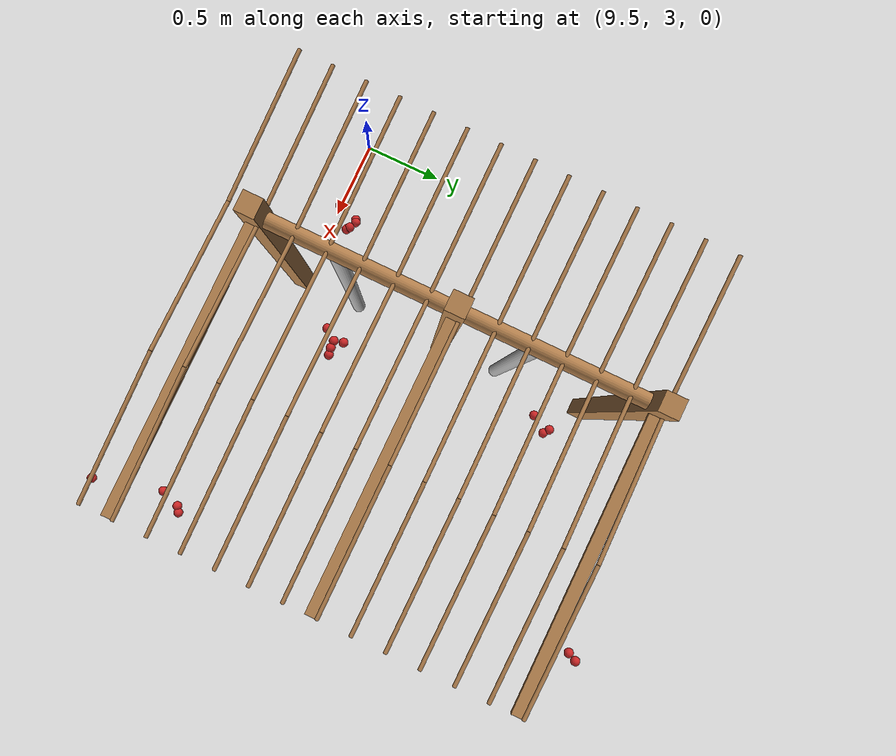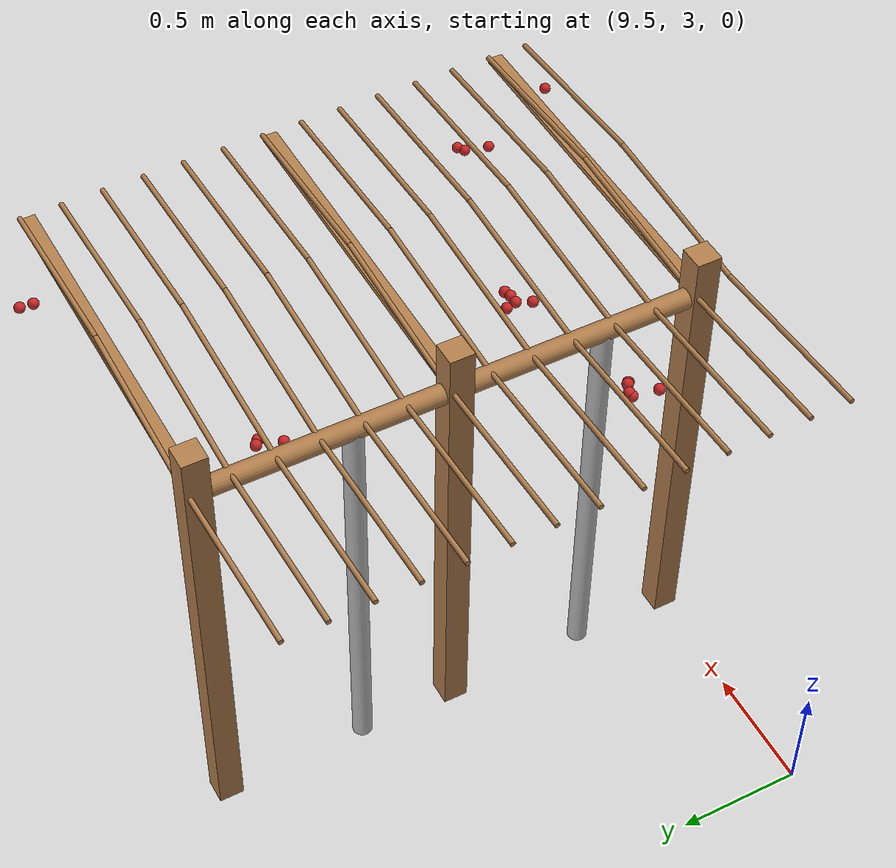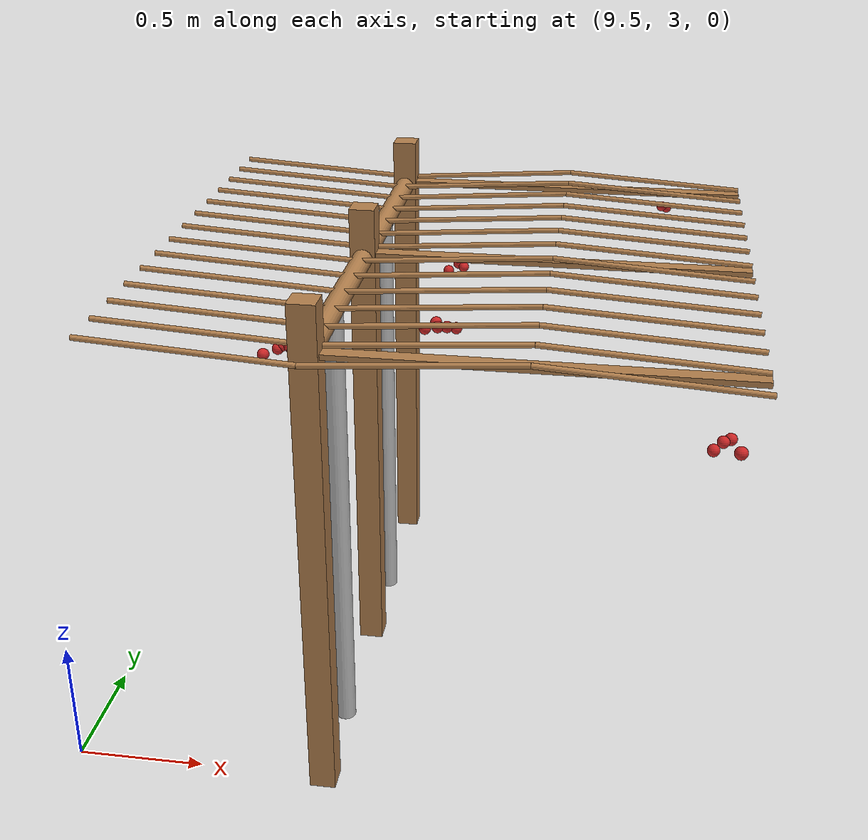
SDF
<sdf version="1.4">
 <model name="pergola">
  <include><name>post_80</name><pose>10.5 3.0 0 0 0 0</pose><uri>model://post</uri></include>
  <include><name>post_81</name><pose>10.5 4.0 0 0 0 0</pose><uri>model://post</uri></include>
  <include><name>post_82</name><pose>10.5 5.0 0 0 0 0</pose><uri>model://post</uri></include>
  <link name="beam_80">
   <pose>11.25 3.0 1.81 0 0 0</pose>
   <collision name="collision"><geometry><box><size>1.5 0.06 0.02</size></box></geometry></collision>
   <visual name="visual">
    <geometry><box><size>1.5 0.06 0.02</size></box></geometry>
    <material><script><name>Gazebo/Wood</name></script></material>
   </visual>
   <inertial>
    <mass>5</mass>
    <inertia>
     <ixx>0.0016666666666666668</ixx>
     <ixy>0.0</ixy>
     <ixz>0.0</ixz>
     <iyy>0.9390000000000001</iyy>
     <iyz>0.0</iyz>
     <izz>0.9376666666666665</izz>
    </inertia>
   </inertial>
  </link>
  <link name="beam_81">
   <pose>11.25 4.0 1.81 0 0 0</pose>
   <collision name="collision"><geometry><box><size>1.5 0.06 0.02</size></box></geometry></collision>
   <visual name="visual">
    <geometry><box><size>1.5 0.06 0.02</size></box></geometry>
    <material><script><name>Gazebo/Wood</name></script></material>
   </visual>
   <inertial>
    <mass>5</mass>
    <inertia>
     <ixx>0.0016666666666666668</ixx>
     <ixy>0.0</ixy>
     <ixz>0.0</ixz>
     <iyy>0.9390000000000001</iyy>
     <iyz>0.0</iyz>
     <izz>0.9376666666666665</izz>
    </inertia>
   </inertial>
  </link>
  <link name="beam_82">
   <pose>11.25 5.0 1.81 0 0 0</pose>
   <collision name="collision"><geometry><box><size>1.5 0.06 0.02</size></box></geometry></collision>
   <visual name="visual">
    <geometry><box><size>1.5 0.06 0.02</size></box></geometry>
    <material><script><name>Gazebo/Wood</name></script></material>
   </visual>
   <inertial>
    <mass>5</mass>
    <inertia>
     <ixx>0.0016666666666666668</ixx>
     <ixy>0.0</ixy>
     <ixz>0.0</ixz>
     <iyy>0.9390000000000001</iyy>
     <iyz>0.0</iyz>
     <izz>0.9376666666666665</izz>
    </inertia>
   </inertial>
  </link>
  <include><name>tree_73</name><pose>10.5 3.4 0 0 0 0</pose><uri>model://tree_trunk</uri></include>
  <include><name>tree_74</name><pose>10.5 4.4 0 0 0 0</pose><uri>model://tree_trunk</uri></include>
  <link name="baseBranch_73">
   <pose>10.5 3.5 1.8 1.5707963267948966 0 0</pose>
   <collision name="collision">
    <geometry><cylinder><radius>0.04</radius><length>0.94</length></cylinder></geometry>
   </collision>
   <visual name="visual">
    <geometry><cylinder><radius>0.04</radius><length>0.94</length></cylinder></geometry>
    <material><script><name>Gazebo/WoodFloor</name></script></material>
   </visual>
   <inertial>
    <mass>10</mass>
    <inertia>
     <ixx>0.7403333333333334</ixx>
     <ixy>0.0</ixy>
     <ixz>0.0</ixz>
     <iyy>0.7403333333333334</iyy>
     <iyz>0.0</iyz>
     <izz>0.008</izz>
    </inertia>
   </inertial>
  </link>
  <link name="baseBranch_74">
   <pose>10.5 4.5 1.8 1.5707963267948966 0 0</pose>
   <collision name="collision">
    <geometry><cylinder><radius>0.04</radius><length>0.94</length></cylinder></geometry>
   </collision>
   <visual name="visual">
    <geometry><cylinder><radius>0.04</radius><length>0.94</length></cylinder></geometry>
    <material><script><name>Gazebo/WoodFloor</name></script></material>
   </visual>
   <inertial>
    <mass>10</mass>
    <inertia>
     <ixx>0.7403333333333334</ixx>
     <ixy>0.0</ixy>
     <ixz>0.0</ixz>
     <iyy>0.7403333333333334</iyy>
     <iyz>0.0</iyz>
     <izz>0.008</izz>
    </inertia>
   </inertial>
  </link>
  <link name="vine_755">
   <pose>10.125 2.863333333333333 1.85 0 -1.5042281630190728 0</pose>
   <collision name="collision">
    <geometry><cylinder><radius>0.01</radius><length>0.7516648189186453</length></cylinder></geometry>
   </collision>
   <visual name="visual">
    <geometry><cylinder><radius>0.01</radius><length>0.7516648189186453</length></cylinder></geometry>
    <material><script><name>Gazebo/WoodFloor</name></script></material>
   </visual>
   <inertial>
    <mass>5</mass>
    <inertia>
     <ixx>0.23554166666666657</ixx>
     <ixy>0.0</ixy>
     <ixz>0.0</ixz>
     <iyy>0.23554166666666657</iyy>
     <iyz>0.0</iyz>
     <izz>0.00025</izz>
    </inertia>
   </inertial>
  </link>
  <link name="vine_757">
   <pose>10.125 3.03 1.85 0 -1.5042281630190728 0</pose>
   <collision name="collision">
    <geometry><cylinder><radius>0.01</radius><length>0.7516648189186453</length></cylinder></geometry>
   </collision>
   <visual name="visual">
    <geometry><cylinder><radius>0.01</radius><length>0.7516648189186453</length></cylinder></geometry>
    <material><script><name>Gazebo/WoodFloor</name></script></material>
   </visual>
   <inertial>
    <mass>5</mass>
    <inertia>
     <ixx>0.23554166666666657</ixx>
     <ixy>0.0</ixy>
     <ixz>0.0</ixz>
     <iyy>0.23554166666666657</iyy>
     <iyz>0.0</iyz>
     <izz>0.00025</izz>
    </inertia>
   </inertial>
  </link>
  <link name="vine_759">
   <pose>10.125 3.1966666666666663 1.85 0 -1.5042281630190728 0</pose>
   <collision name="collision">
    <geometry><cylinder><radius>0.01</radius><length>0.7516648189186453</length></cylinder></geometry>
   </collision>
   <visual name="visual">
    <geometry><cylinder><radius>0.01</radius><length>0.7516648189186453</length></cylinder></geometry>
    <material><script><name>Gazebo/WoodFloor</name></script></material>
   </visual>
   <inertial>
    <mass>5</mass>
    <inertia>
     <ixx>0.23554166666666657</ixx>
     <ixy>0.0</ixy>
     <ixz>0.0</ixz>
     <iyy>0.23554166666666657</iyy>
     <iyz>0.0</iyz>
     <izz>0.00025</izz>
    </inertia>
   </inertial>
  </link>
  <link name="vine_761">
   <pose>10.125 3.363333333333333 1.85 0 -1.5042281630190728 0</pose>
   <collision name="collision">
    <geometry><cylinder><radius>0.01</radius><length>0.7516648189186453</length></cylinder></geometry>
   </collision>
   <visual name="visual">
    <geometry><cylinder><radius>0.01</radius><length>0.7516648189186453</length></cylinder></geometry>
    <material><script><name>Gazebo/WoodFloor</name></script></material>
   </visual>
   <inertial>
    <mass>5</mass>
    <inertia>
     <ixx>0.23554166666666657</ixx>
     <ixy>0.0</ixy>
     <ixz>0.0</ixz>
     <iyy>0.23554166666666657</iyy>
     <iyz>0.0</iyz>
     <izz>0.00025</izz>
    </inertia>
   </inertial>
  </link>
  <link name="vine_763">
   <pose>10.125 3.53 1.85 0 -1.5042281630190728 0</pose>
   <collision name="collision">
    <geometry><cylinder><radius>0.01</radius><length>0.7516648189186453</length></cylinder></geometry>
   </collision>
   <visual name="visual">
    <geometry><cylinder><radius>0.01</radius><length>0.7516648189186453</length></cylinder></geometry>
    <material><script><name>Gazebo/WoodFloor</name></script></material>
   </visual>
   <inertial>
    <mass>5</mass>
    <inertia>
     <ixx>0.23554166666666657</ixx>
     <ixy>0.0</ixy>
     <ixz>0.0</ixz>
     <iyy>0.23554166666666657</iyy>
     <iyz>0.0</iyz>
     <izz>0.00025</izz>
    </inertia>
   </inertial>
  </link>
  <link name="vine_765">
   <pose>10.125 3.6966666666666663 1.85 0 -1.5042281630190728 0</pose>
   <collision name="collision">
    <geometry><cylinder><radius>0.01</radius><length>0.7516648189186453</length></cylinder></geometry>
   </collision>
   <visual name="visual">
    <geometry><cylinder><radius>0.01</radius><length>0.7516648189186453</length></cylinder></geometry>
    <material><script><name>Gazebo/WoodFloor</name></script></material>
   </visual>
   <inertial>
    <mass>5</mass>
    <inertia>
     <ixx>0.23554166666666657</ixx>
     <ixy>0.0</ixy>
     <ixz>0.0</ixz>
     <iyy>0.23554166666666657</iyy>
     <iyz>0.0</iyz>
     <izz>0.00025</izz>
    </inertia>
   </inertial>
  </link>
  <link name="vine_767">
   <pose>10.125 3.863333333333333 1.85 0 -1.5042281630190728 0</pose>
   <collision name="collision">
    <geometry><cylinder><radius>0.01</radius><length>0.7516648189186453</length></cylinder></geometry>
   </collision>
   <visual name="visual">
    <geometry><cylinder><radius>0.01</radius><length>0.7516648189186453</length></cylinder></geometry>
    <material><script><name>Gazebo/WoodFloor</name></script></material>
   </visual>
   <inertial>
    <mass>5</mass>
    <inertia>
     <ixx>0.23554166666666657</ixx>
     <ixy>0.0</ixy>
     <ixz>0.0</ixz>
     <iyy>0.23554166666666657</iyy>
     <iyz>0.0</iyz>
     <izz>0.00025</izz>
    </inertia>
   </inertial>
  </link>
  <link name="vine_769">
   <pose>10.125 4.03 1.85 0 -1.5042281630190728 0</pose>
   <collision name="collision">
    <geometry><cylinder><radius>0.01</radius><length>0.7516648189186453</length></cylinder></geometry>
   </collision>
   <visual name="visual">
    <geometry><cylinder><radius>0.01</radius><length>0.7516648189186453</length></cylinder></geometry>
    <material><script><name>Gazebo/WoodFloor</name></script></material>
   </visual>
   <inertial>
    <mass>5</mass>
    <inertia>
     <ixx>0.23554166666666657</ixx>
     <ixy>0.0</ixy>
     <ixz>0.0</ixz>
     <iyy>0.23554166666666657</iyy>
     <iyz>0.0</iyz>
     <izz>0.00025</izz>
    </inertia>
   </inertial>
  </link>
  <link name="vine_771">
   <pose>10.125 4.196666666666666 1.85 0 -1.5042281630190728 0</pose>
   <collision name="collision">
    <geometry><cylinder><radius>0.01</radius><length>0.7516648189186453</length></cylinder></geometry>
   </collision>
   <visual name="visual">
    <geometry><cylinder><radius>0.01</radius><length>0.7516648189186453</length></cylinder></geometry>
    <material><script><name>Gazebo/WoodFloor</name></script></material>
   </visual>
   <inertial>
    <mass>5</mass>
    <inertia>
     <ixx>0.23554166666666657</ixx>
     <ixy>0.0</ixy>
     <ixz>0.0</ixz>
     <iyy>0.23554166666666657</iyy>
     <iyz>0.0</iyz>
     <izz>0.00025</izz>
    </inertia>
   </inertial>
  </link>
  <link name="vine_773">
   <pose>10.125 4.363333333333333 1.85 0 -1.5042281630190728 0</pose>
   <collision name="collision">
    <geometry><cylinder><radius>0.01</radius><length>0.7516648189186453</length></cylinder></geometry>
   </collision>
   <visual name="visual">
    <geometry><cylinder><radius>0.01</radius><length>0.7516648189186453</length></cylinder></geometry>
    <material><script><name>Gazebo/WoodFloor</name></script></material>
   </visual>
   <inertial>
    <mass>5</mass>
    <inertia>
     <ixx>0.23554166666666657</ixx>
     <ixy>0.0</ixy>
     <ixz>0.0</ixz>
     <iyy>0.23554166666666657</iyy>
     <iyz>0.0</iyz>
     <izz>0.00025</izz>
    </inertia>
   </inertial>
  </link>
  <link name="vine_775">
   <pose>10.125 4.53 1.85 0 -1.5042281630190728 0</pose>
   <collision name="collision">
    <geometry><cylinder><radius>0.01</radius><length>0.7516648189186453</length></cylinder></geometry>
   </collision>
   <visual name="visual">
    <geometry><cylinder><radius>0.01</radius><length>0.7516648189186453</length></cylinder></geometry>
    <material><script><name>Gazebo/WoodFloor</name></script></material>
   </visual>
   <inertial>
    <mass>5</mass>
    <inertia>
     <ixx>0.23554166666666657</ixx>
     <ixy>0.0</ixy>
     <ixz>0.0</ixz>
     <iyy>0.23554166666666657</iyy>
     <iyz>0.0</iyz>
     <izz>0.00025</izz>
    </inertia>
   </inertial>
  </link>
  <link name="vine_777">
   <pose>10.125 4.696666666666666 1.85 0 -1.5042281630190728 0</pose>
   <collision name="collision">
    <geometry><cylinder><radius>0.01</radius><length>0.7516648189186453</length></cylinder></geometry>
   </collision>
   <visual name="visual">
    <geometry><cylinder><radius>0.01</radius><length>0.7516648189186453</length></cylinder></geometry>
    <material><script><name>Gazebo/WoodFloor</name></script></material>
   </visual>
   <inertial>
    <mass>5</mass>
    <inertia>
     <ixx>0.23554166666666657</ixx>
     <ixy>0.0</ixy>
     <ixz>0.0</ixz>
     <iyy>0.23554166666666657</iyy>
     <iyz>0.0</iyz>
     <izz>0.00025</izz>
    </inertia>
   </inertial>
  </link>
  <link name="vine_779">
   <pose>10.125 4.863333333333333 1.85 0 -1.5042281630190728 0</pose>
   <collision name="collision">
    <geometry><cylinder><radius>0.01</radius><length>0.7516648189186453</length></cylinder></geometry>
   </collision>
   <visual name="visual">
    <geometry><cylinder><radius>0.01</radius><length>0.7516648189186453</length></cylinder></geometry>
    <material><script><name>Gazebo/WoodFloor</name></script></material>
   </visual>
   <inertial>
    <mass>5</mass>
    <inertia>
     <ixx>0.23554166666666657</ixx>
     <ixy>0.0</ixy>
     <ixz>0.0</ixz>
     <iyy>0.23554166666666657</iyy>
     <iyz>0.0</iyz>
     <izz>0.00025</izz>
    </inertia>
   </inertial>
  </link>
  <link name="vine_781">
   <pose>10.125 5.03 1.85 0 -1.5042281630190728 0</pose>
   <collision name="collision">
    <geometry><cylinder><radius>0.01</radius><length>0.7516648189186453</length></cylinder></geometry>
   </collision>
   <visual name="visual">
    <geometry><cylinder><radius>0.01</radius><length>0.7516648189186453</length></cylinder></geometry>
    <material><script><name>Gazebo/WoodFloor</name></script></material>
   </visual>
   <inertial>
    <mass>5</mass>
    <inertia>
     <ixx>0.23554166666666657</ixx>
     <ixy>0.0</ixy>
     <ixz>0.0</ixz>
     <iyy>0.23554166666666657</iyy>
     <iyz>0.0</iyz>
     <izz>0.00025</izz>
    </inertia>
   </inertial>
  </link>
  <link name="vine_874">
   <pose>10.875 2.863333333333333 1.85 0 1.5042281630190728 0</pose>
   <collision name="collision">
    <geometry><cylinder><radius>0.01</radius><length>0.7516648189186453</length></cylinder></geometry>
   </collision>
   <visual name="visual">
    <geometry><cylinder><radius>0.01</radius><length>0.7516648189186453</length></cylinder></geometry>
    <material><script><name>Gazebo/WoodFloor</name></script></material>
   </visual>
   <inertial>
    <mass>5</mass>
    <inertia>
     <ixx>0.23554166666666657</ixx>
     <ixy>0.0</ixy>
     <ixz>0.0</ixz>
     <iyy>0.23554166666666657</iyy>
     <iyz>0.0</iyz>
     <izz>0.00025</izz>
    </inertia>
   </inertial>
  </link>
  <link name="vine_875">
   <pose>11.625 2.863333333333333 1.85 0 -1.5042281630190728 0</pose>
   <collision name="collision">
    <geometry><cylinder><radius>0.01</radius><length>0.7516648189186453</length></cylinder></geometry>
   </collision>
   <visual name="visual">
    <geometry><cylinder><radius>0.01</radius><length>0.7516648189186453</length></cylinder></geometry>
    <material><script><name>Gazebo/WoodFloor</name></script></material>
   </visual>
   <inertial>
    <mass>5</mass>
    <inertia>
     <ixx>0.23554166666666657</ixx>
     <ixy>0.0</ixy>
     <ixz>0.0</ixz>
     <iyy>0.23554166666666657</iyy>
     <iyz>0.0</iyz>
     <izz>0.00025</izz>
    </inertia>
   </inertial>
  </link>
  <link name="vine_876">
   <pose>10.875 3.03 1.85 0 1.5042281630190728 0</pose>
   <collision name="collision">
    <geometry><cylinder><radius>0.01</radius><length>0.7516648189186453</length></cylinder></geometry>
   </collision>
   <visual name="visual">
    <geometry><cylinder><radius>0.01</radius><length>0.7516648189186453</length></cylinder></geometry>
    <material><script><name>Gazebo/WoodFloor</name></script></material>
   </visual>
   <inertial>
    <mass>5</mass>
    <inertia>
     <ixx>0.23554166666666657</ixx>
     <ixy>0.0</ixy>
     <ixz>0.0</ixz>
     <iyy>0.23554166666666657</iyy>
     <iyz>0.0</iyz>
     <izz>0.00025</izz>
    </inertia>
   </inertial>
  </link>
  <link name="vine_877">
   <pose>11.625 3.03 1.85 0 -1.5042281630190728 0</pose>
   <collision name="collision">
    <geometry><cylinder><radius>0.01</radius><length>0.7516648189186453</length></cylinder></geometry>
   </collision>
   <visual name="visual">
    <geometry><cylinder><radius>0.01</radius><length>0.7516648189186453</length></cylinder></geometry>
    <material><script><name>Gazebo/WoodFloor</name></script></material>
   </visual>
   <inertial>
    <mass>5</mass>
    <inertia>
     <ixx>0.23554166666666657</ixx>
     <ixy>0.0</ixy>
     <ixz>0.0</ixz>
     <iyy>0.23554166666666657</iyy>
     <iyz>0.0</iyz>
     <izz>0.00025</izz>
    </inertia>
   </inertial>
  </link>
  <link name="vine_878">
   <pose>10.875 3.1966666666666663 1.85 0 1.5042281630190728 0</pose>
   <collision name="collision">
    <geometry><cylinder><radius>0.01</radius><length>0.7516648189186453</length></cylinder></geometry>
   </collision>
   <visual name="visual">
    <geometry><cylinder><radius>0.01</radius><length>0.7516648189186453</length></cylinder></geometry>
    <material><script><name>Gazebo/WoodFloor</name></script></material>
   </visual>
   <inertial>
    <mass>5</mass>
    <inertia>
     <ixx>0.23554166666666657</ixx>
     <ixy>0.0</ixy>
     <ixz>0.0</ixz>
     <iyy>0.23554166666666657</iyy>
     <iyz>0.0</iyz>
     <izz>0.00025</izz>
    </inertia>
   </inertial>
  </link>
  <link name="vine_879">
   <pose>11.625 3.1966666666666663 1.85 0 -1.5042281630190728 0</pose>
   <collision name="collision">
    <geometry><cylinder><radius>0.01</radius><length>0.7516648189186453</length></cylinder></geometry>
   </collision>
   <visual name="visual">
    <geometry><cylinder><radius>0.01</radius><length>0.7516648189186453</length></cylinder></geometry>
    <material><script><name>Gazebo/WoodFloor</name></script></material>
   </visual>
   <inertial>
    <mass>5</mass>
    <inertia>
     <ixx>0.23554166666666657</ixx>
     <ixy>0.0</ixy>
     <ixz>0.0</ixz>
     <iyy>0.23554166666666657</iyy>
     <iyz>0.0</iyz>
     <izz>0.00025</izz>
    </inertia>
   </inertial>
  </link>
  <link name="vine_880">
   <pose>10.875 3.363333333333333 1.85 0 1.5042281630190728 0</pose>
   <collision name="collision">
    <geometry><cylinder><radius>0.01</radius><length>0.7516648189186453</length></cylinder></geometry>
   </collision>
   <visual name="visual">
    <geometry><cylinder><radius>0.01</radius><length>0.7516648189186453</length></cylinder></geometry>
    <material><script><name>Gazebo/WoodFloor</name></script></material>
   </visual>
   <inertial>
    <mass>5</mass>
    <inertia>
     <ixx>0.23554166666666657</ixx>
     <ixy>0.0</ixy>
     <ixz>0.0</ixz>
     <iyy>0.23554166666666657</iyy>
     <iyz>0.0</iyz>
     <izz>0.00025</izz>
    </inertia>
   </inertial>
  </link>
  <link name="vine_881">
   <pose>11.625 3.363333333333333 1.85 0 -1.5042281630190728 0</pose>
   <collision name="collision">
    <geometry><cylinder><radius>0.01</radius><length>0.7516648189186453</length></cylinder></geometry>
   </collision>
   <visual name="visual">
    <geometry><cylinder><radius>0.01</radius><length>0.7516648189186453</length></cylinder></geometry>
    <material><script><name>Gazebo/WoodFloor</name></script></material>
   </visual>
   <inertial>
    <mass>5</mass>
    <inertia>
     <ixx>0.23554166666666657</ixx>
     <ixy>0.0</ixy>
     <ixz>0.0</ixz>
     <iyy>0.23554166666666657</iyy>
     <iyz>0.0</iyz>
     <izz>0.00025</izz>
    </inertia>
   </inertial>
  </link>
  <link name="vine_882">
   <pose>10.875 3.53 1.85 0 1.5042281630190728 0</pose>
   <collision name="collision">
    <geometry><cylinder><radius>0.01</radius><length>0.7516648189186453</length></cylinder></geometry>
   </collision>
   <visual name="visual">
    <geometry><cylinder><radius>0.01</radius><length>0.7516648189186453</length></cylinder></geometry>
    <material><script><name>Gazebo/WoodFloor</name></script></material>
   </visual>
   <inertial>
    <mass>5</mass>
    <inertia>
     <ixx>0.23554166666666657</ixx>
     <ixy>0.0</ixy>
     <ixz>0.0</ixz>
     <iyy>0.23554166666666657</iyy>
     <iyz>0.0</iyz>
     <izz>0.00025</izz>
    </inertia>
   </inertial>
  </link>
  <link name="vine_883">
   <pose>11.625 3.53 1.85 0 -1.5042281630190728 0</pose>
   <collision name="collision">
    <geometry><cylinder><radius>0.01</radius><length>0.7516648189186453</length></cylinder></geometry>
   </collision>
   <visual name="visual">
    <geometry><cylinder><radius>0.01</radius><length>0.7516648189186453</length></cylinder></geometry>
    <material><script><name>Gazebo/WoodFloor</name></script></material>
   </visual>
   <inertial>
    <mass>5</mass>
    <inertia>
     <ixx>0.23554166666666657</ixx>
     <ixy>0.0</ixy>
     <ixz>0.0</ixz>
     <iyy>0.23554166666666657</iyy>
     <iyz>0.0</iyz>
     <izz>0.00025</izz>
    </inertia>
   </inertial>
  </link>
  <link name="vine_884">
   <pose>10.875 3.6966666666666663 1.85 0 1.5042281630190728 0</pose>
   <collision name="collision">
    <geometry><cylinder><radius>0.01</radius><length>0.7516648189186453</length></cylinder></geometry>
   </collision>
   <visual name="visual">
    <geometry><cylinder><radius>0.01</radius><length>0.7516648189186453</length></cylinder></geometry>
    <material><script><name>Gazebo/WoodFloor</name></script></material>
   </visual>
   <inertial>
    <mass>5</mass>
    <inertia>
     <ixx>0.23554166666666657</ixx>
     <ixy>0.0</ixy>
     <ixz>0.0</ixz>
     <iyy>0.23554166666666657</iyy>
     <iyz>0.0</iyz>
     <izz>0.00025</izz>
    </inertia>
   </inertial>
  </link>
  <link name="vine_885">
   <pose>11.625 3.6966666666666663 1.85 0 -1.5042281630190728 0</pose>
   <collision name="collision">
    <geometry><cylinder><radius>0.01</radius><length>0.7516648189186453</length></cylinder></geometry>
   </collision>
   <visual name="visual">
    <geometry><cylinder><radius>0.01</radius><length>0.7516648189186453</length></cylinder></geometry>
    <material><script><name>Gazebo/WoodFloor</name></script></material>
   </visual>
   <inertial>
    <mass>5</mass>
    <inertia>
     <ixx>0.23554166666666657</ixx>
     <ixy>0.0</ixy>
     <ixz>0.0</ixz>
     <iyy>0.23554166666666657</iyy>
     <iyz>0.0</iyz>
     <izz>0.00025</izz>
    </inertia>
   </inertial>
  </link>
  <link name="vine_886">
   <pose>10.875 3.863333333333333 1.85 0 1.5042281630190728 0</pose>
   <collision name="collision">
    <geometry><cylinder><radius>0.01</radius><length>0.7516648189186453</length></cylinder></geometry>
   </collision>
   <visual name="visual">
    <geometry><cylinder><radius>0.01</radius><length>0.7516648189186453</length></cylinder></geometry>
    <material><script><name>Gazebo/WoodFloor</name></script></material>
   </visual>
   <inertial>
    <mass>5</mass>
    <inertia>
     <ixx>0.23554166666666657</ixx>
     <ixy>0.0</ixy>
     <ixz>0.0</ixz>
     <iyy>0.23554166666666657</iyy>
     <iyz>0.0</iyz>
     <izz>0.00025</izz>
    </inertia>
   </inertial>
  </link>
  <link name="vine_887">
   <pose>11.625 3.863333333333333 1.85 0 -1.5042281630190728 0</pose>
   <collision name="collision">
    <geometry><cylinder><radius>0.01</radius><length>0.7516648189186453</length></cylinder></geometry>
   </collision>
   <visual name="visual">
    <geometry><cylinder><radius>0.01</radius><length>0.7516648189186453</length></cylinder></geometry>
    <material><script><name>Gazebo/WoodFloor</name></script></material>
   </visual>
   <inertial>
    <mass>5</mass>
    <inertia>
     <ixx>0.23554166666666657</ixx>
     <ixy>0.0</ixy>
     <ixz>0.0</ixz>
     <iyy>0.23554166666666657</iyy>
     <iyz>0.0</iyz>
     <izz>0.00025</izz>
    </inertia>
   </inertial>
  </link>
  <link name="vine_888">
   <pose>10.875 4.03 1.85 0 1.5042281630190728 0</pose>
   <collision name="collision">
    <geometry><cylinder><radius>0.01</radius><length>0.7516648189186453</length></cylinder></geometry>
   </collision>
   <visual name="visual">
    <geometry><cylinder><radius>0.01</radius><length>0.7516648189186453</length></cylinder></geometry>
    <material><script><name>Gazebo/WoodFloor</name></script></material>
   </visual>
   <inertial>
    <mass>5</mass>
    <inertia>
     <ixx>0.23554166666666657</ixx>
     <ixy>0.0</ixy>
     <ixz>0.0</ixz>
     <iyy>0.23554166666666657</iyy>
     <iyz>0.0</iyz>
     <izz>0.00025</izz>
    </inertia>
   </inertial>
  </link>
  <link name="vine_889">
   <pose>11.625 4.03 1.85 0 -1.5042281630190728 0</pose>
   <collision name="collision">
    <geometry><cylinder><radius>0.01</radius><length>0.7516648189186453</length></cylinder></geometry>
   </collision>
   <visual name="visual">
    <geometry><cylinder><radius>0.01</radius><length>0.7516648189186453</length></cylinder></geometry>
    <material><script><name>Gazebo/WoodFloor</name></script></material>
   </visual>
   <inertial>
    <mass>5</mass>
    <inertia>
     <ixx>0.23554166666666657</ixx>
     <ixy>0.0</ixy>
     <ixz>0.0</ixz>
     <iyy>0.23554166666666657</iyy>
     <iyz>0.0</iyz>
     <izz>0.00025</izz>
    </inertia>
   </inertial>
  </link>
  <link name="vine_890">
   <pose>10.875 4.196666666666666 1.85 0 1.5042281630190728 0</pose>
   <collision name="collision">
    <geometry><cylinder><radius>0.01</radius><length>0.7516648189186453</length></cylinder></geometry>
   </collision>
   <visual name="visual">
    <geometry><cylinder><radius>0.01</radius><length>0.7516648189186453</length></cylinder></geometry>
    <material><script><name>Gazebo/WoodFloor</name></script></material>
   </visual>
   <inertial>
    <mass>5</mass>
    <inertia>
     <ixx>0.23554166666666657</ixx>
     <ixy>0.0</ixy>
     <ixz>0.0</ixz>
     <iyy>0.23554166666666657</iyy>
     <iyz>0.0</iyz>
     <izz>0.00025</izz>
    </inertia>
   </inertial>
  </link>
  <link name="vine_891">
   <pose>11.625 4.196666666666666 1.85 0 -1.5042281630190728 0</pose>
   <collision name="collision">
    <geometry><cylinder><radius>0.01</radius><length>0.7516648189186453</length></cylinder></geometry>
   </collision>
   <visual name="visual">
    <geometry><cylinder><radius>0.01</radius><length>0.7516648189186453</length></cylinder></geometry>
    <material><script><name>Gazebo/WoodFloor</name></script></material>
   </visual>
   <inertial>
    <mass>5</mass>
    <inertia>
     <ixx>0.23554166666666657</ixx>
     <ixy>0.0</ixy>
     <ixz>0.0</ixz>
     <iyy>0.23554166666666657</iyy>
     <iyz>0.0</iyz>
     <izz>0.00025</izz>
    </inertia>
   </inertial>
  </link>
  <link name="vine_892">
   <pose>10.875 4.363333333333333 1.85 0 1.5042281630190728 0</pose>
   <collision name="collision">
    <geometry><cylinder><radius>0.01</radius><length>0.7516648189186453</length></cylinder></geometry>
   </collision>
   <visual name="visual">
    <geometry><cylinder><radius>0.01</radius><length>0.7516648189186453</length></cylinder></geometry>
    <material><script><name>Gazebo/WoodFloor</name></script></material>
   </visual>
   <inertial>
    <mass>5</mass>
    <inertia>
     <ixx>0.23554166666666657</ixx>
     <ixy>0.0</ixy>
     <ixz>0.0</ixz>
     <iyy>0.23554166666666657</iyy>
     <iyz>0.0</iyz>
     <izz>0.00025</izz>
    </inertia>
   </inertial>
  </link>
  <link name="vine_893">
   <pose>11.625 4.363333333333333 1.85 0 -1.5042281630190728 0</pose>
   <collision name="collision">
    <geometry><cylinder><radius>0.01</radius><length>0.7516648189186453</length></cylinder></geometry>
   </collision>
   <visual name="visual">
    <geometry><cylinder><radius>0.01</radius><length>0.7516648189186453</length></cylinder></geometry>
    <material><script><name>Gazebo/WoodFloor</name></script></material>
   </visual>
   <inertial>
    <mass>5</mass>
    <inertia>
     <ixx>0.23554166666666657</ixx>
     <ixy>0.0</ixy>
     <ixz>0.0</ixz>
     <iyy>0.23554166666666657</iyy>
     <iyz>0.0</iyz>
     <izz>0.00025</izz>
    </inertia>
   </inertial>
  </link>
  <link name="vine_894">
   <pose>10.875 4.53 1.85 0 1.5042281630190728 0</pose>
   <collision name="collision">
    <geometry><cylinder><radius>0.01</radius><length>0.7516648189186453</length></cylinder></geometry>
   </collision>
   <visual name="visual">
    <geometry><cylinder><radius>0.01</radius><length>0.7516648189186453</length></cylinder></geometry>
    <material><script><name>Gazebo/WoodFloor</name></script></material>
   </visual>
   <inertial>
    <mass>5</mass>
    <inertia>
     <ixx>0.23554166666666657</ixx>
     <ixy>0.0</ixy>
     <ixz>0.0</ixz>
     <iyy>0.23554166666666657</iyy>
     <iyz>0.0</iyz>
     <izz>0.00025</izz>
    </inertia>
   </inertial>
  </link>
  <link name="vine_895">
   <pose>11.625 4.53 1.85 0 -1.5042281630190728 0</pose>
   <collision name="collision">
    <geometry><cylinder><radius>0.01</radius><length>0.7516648189186453</length></cylinder></geometry>
   </collision>
   <visual name="visual">
    <geometry><cylinder><radius>0.01</radius><length>0.7516648189186453</length></cylinder></geometry>
    <material><script><name>Gazebo/WoodFloor</name></script></material>
   </visual>
   <inertial>
    <mass>5</mass>
    <inertia>
     <ixx>0.23554166666666657</ixx>
     <ixy>0.0</ixy>
     <ixz>0.0</ixz>
     <iyy>0.23554166666666657</iyy>
     <iyz>0.0</iyz>
     <izz>0.00025</izz>
    </inertia>
   </inertial>
  </link>
  <link name="vine_896">
   <pose>10.875 4.696666666666666 1.85 0 1.5042281630190728 0</pose>
   <collision name="collision">
    <geometry><cylinder><radius>0.01</radius><length>0.7516648189186453</length></cylinder></geometry>
   </collision>
   <visual name="visual">
    <geometry><cylinder><radius>0.01</radius><length>0.7516648189186453</length></cylinder></geometry>
    <material><script><name>Gazebo/WoodFloor</name></script></material>
   </visual>
   <inertial>
    <mass>5</mass>
    <inertia>
     <ixx>0.23554166666666657</ixx>
     <ixy>0.0</ixy>
     <ixz>0.0</ixz>
     <iyy>0.23554166666666657</iyy>
     <iyz>0.0</iyz>
     <izz>0.00025</izz>
    </inertia>
   </inertial>
  </link>
  <link name="vine_897">
   <pose>11.625 4.696666666666666 1.85 0 -1.5042281630190728 0</pose>
   <collision name="collision">
    <geometry><cylinder><radius>0.01</radius><length>0.7516648189186453</length></cylinder></geometry>
   </collision>
   <visual name="visual">
    <geometry><cylinder><radius>0.01</radius><length>0.7516648189186453</length></cylinder></geometry>
    <material><script><name>Gazebo/WoodFloor</name></script></material>
   </visual>
   <inertial>
    <mass>5</mass>
    <inertia>
     <ixx>0.23554166666666657</ixx>
     <ixy>0.0</ixy>
     <ixz>0.0</ixz>
     <iyy>0.23554166666666657</iyy>
     <iyz>0.0</iyz>
     <izz>0.00025</izz>
    </inertia>
   </inertial>
  </link>
  <link name="vine_898">
   <pose>10.875 4.863333333333333 1.85 0 1.5042281630190728 0</pose>
   <collision name="collision">
    <geometry><cylinder><radius>0.01</radius><length>0.7516648189186453</length></cylinder></geometry>
   </collision>
   <visual name="visual">
    <geometry><cylinder><radius>0.01</radius><length>0.7516648189186453</length></cylinder></geometry>
    <material><script><name>Gazebo/WoodFloor</name></script></material>
   </visual>
   <inertial>
    <mass>5</mass>
    <inertia>
     <ixx>0.23554166666666657</ixx>
     <ixy>0.0</ixy>
     <ixz>0.0</ixz>
     <iyy>0.23554166666666657</iyy>
     <iyz>0.0</iyz>
     <izz>0.00025</izz>
    </inertia>
   </inertial>
  </link>
  <link name="vine_899">
   <pose>11.625 4.863333333333333 1.85 0 -1.5042281630190728 0</pose>
   <collision name="collision">
    <geometry><cylinder><radius>0.01</radius><length>0.7516648189186453</length></cylinder></geometry>
   </collision>
   <visual name="visual">
    <geometry><cylinder><radius>0.01</radius><length>0.7516648189186453</length></cylinder></geometry>
    <material><script><name>Gazebo/WoodFloor</name></script></material>
   </visual>
   <inertial>
    <mass>5</mass>
    <inertia>
     <ixx>0.23554166666666657</ixx>
     <ixy>0.0</ixy>
     <ixz>0.0</ixz>
     <iyy>0.23554166666666657</iyy>
     <iyz>0.0</iyz>
     <izz>0.00025</izz>
    </inertia>
   </inertial>
  </link>
  <link name="vine_900">
   <pose>10.875 5.03 1.85 0 1.5042281630190728 0</pose>
   <collision name="collision">
    <geometry><cylinder><radius>0.01</radius><length>0.7516648189186453</length></cylinder></geometry>
   </collision>
   <visual name="visual">
    <geometry><cylinder><radius>0.01</radius><length>0.7516648189186453</length></cylinder></geometry>
    <material><script><name>Gazebo/WoodFloor</name></script></material>
   </visual>
   <inertial>
    <mass>5</mass>
    <inertia>
     <ixx>0.23554166666666657</ixx>
     <ixy>0.0</ixy>
     <ixz>0.0</ixz>
     <iyy>0.23554166666666657</iyy>
     <iyz>0.0</iyz>
     <izz>0.00025</izz>
    </inertia>
   </inertial>
  </link>
  <link name="vine_901">
   <pose>11.625 5.03 1.85 0 -1.5042281630190728 0</pose>
   <collision name="collision">
    <geometry><cylinder><radius>0.01</radius><length>0.7516648189186453</length></cylinder></geometry>
   </collision>
   <visual name="visual">
    <geometry><cylinder><radius>0.01</radius><length>0.7516648189186453</length></cylinder></geometry>
    <material><script><name>Gazebo/WoodFloor</name></script></material>
   </visual>
   <inertial>
    <mass>5</mass>
    <inertia>
     <ixx>0.23554166666666657</ixx>
     <ixy>0.0</ixy>
     <ixz>0.0</ixz>
     <iyy>0.23554166666666657</iyy>
     <iyz>0.0</iyz>
     <izz>0.00025</izz>
    </inertia>
   </inertial>
  </link>
  <link name="fruit_40">
   <pose>10.267115406145665 3.2949353199992615 1.6619941437609946 0 0 0</pose>
   <collision name="fruit_collision_40"><geometry><sphere><radius>0.022</radius></sphere></geometry></collision>
   <visual name="visual">
    <geometry><sphere><radius>0.022</radius></sphere></geometry>
    <material><script><name>Gazebo/Red</name></script></material>
   </visual>
   <inertial>
    <mass>0.05</mass>
    <inertia>
     <ixx>9.679999999999999e-06</ixx>
     <ixy>0.0</ixy>
     <ixz>0.0</ixz>
     <iyy>9.679999999999999e-06</iyy>
     <iyz>0.0</iyz>
     <izz>9.679999999999999e-06</izz>
    </inertia>
   </inertial>
   <sensor name="fruit_contact_40" type="contact">
    <contact><collision>fruit_collision_40</collision></contact>
   </sensor>
  </link>
  <link name="fruit_72">
   <pose>10.81883821605967 3.500131300509414 1.711781995540495 0 0 0</pose>
   <collision name="fruit_collision_72"><geometry><sphere><radius>0.022</radius></sphere></geometry></collision>
   <visual name="visual">
    <geometry><sphere><radius>0.022</radius></sphere></geometry>
    <material><script><name>Gazebo/Red</name></script></material>
   </visual>
   <inertial>
    <mass>0.05</mass>
    <inertia>
     <ixx>9.679999999999999e-06</ixx>
     <ixy>0.0</ixy>
     <ixz>0.0</ixz>
     <iyy>9.679999999999999e-06</iyy>
     <iyz>0.0</iyz>
     <izz>9.679999999999999e-06</izz>
    </inertia>
   </inertial>
   <sensor name="fruit_contact_72" type="contact">
    <contact><collision>fruit_collision_72</collision></contact>
   </sensor>
  </link>
  <link name="fruit_84">
   <pose>10.761244806642459 4.54815537396448 1.552854594828467 0 0 0</pose>
   <collision name="fruit_collision_84"><geometry><sphere><radius>0.022</radius></sphere></geometry></collision>
   <visual name="visual">
    <geometry><sphere><radius>0.022</radius></sphere></geometry>
    <material><script><name>Gazebo/Red</name></script></material>
   </visual>
   <inertial>
    <mass>0.05</mass>
    <inertia>
     <ixx>9.679999999999999e-06</ixx>
     <ixy>0.0</ixy>
     <ixz>0.0</ixz>
     <iyy>9.679999999999999e-06</iyy>
     <iyz>0.0</iyz>
     <izz>9.679999999999999e-06</izz>
    </inertia>
   </inertial>
   <sensor name="fruit_contact_84" type="contact">
    <contact><collision>fruit_collision_84</collision></contact>
   </sensor>
  </link>
  <link name="fruit_87">
   <pose>11.851979852836216 3.1026414359468566 1.5013744603328238 0 0 0</pose>
   <collision name="fruit_collision_87"><geometry><sphere><radius>0.022</radius></sphere></geometry></collision>
   <visual name="visual">
    <geometry><sphere><radius>0.022</radius></sphere></geometry>
    <material><script><name>Gazebo/Red</name></script></material>
   </visual>
   <inertial>
    <mass>0.05</mass>
    <inertia>
     <ixx>9.679999999999999e-06</ixx>
     <ixy>0.0</ixy>
     <ixz>0.0</ixz>
     <iyy>9.679999999999999e-06</iyy>
     <iyz>0.0</iyz>
     <izz>9.679999999999999e-06</izz>
    </inertia>
   </inertial>
   <sensor name="fruit_contact_87" type="contact">
    <contact><collision>fruit_collision_87</collision></contact>
   </sensor>
  </link>
  <link name="fruit_95">
   <pose>11.671942008406843 5.119159805889459 1.7097215067106195 0 0 0</pose>
   <collision name="fruit_collision_95"><geometry><sphere><radius>0.022</radius></sphere></geometry></collision>
   <visual name="visual">
    <geometry><sphere><radius>0.022</radius></sphere></geometry>
    <material><script><name>Gazebo/Red</name></script></material>
   </visual>
   <inertial>
    <mass>0.05</mass>
    <inertia>
     <ixx>9.679999999999999e-06</ixx>
     <ixy>0.0</ixy>
     <ixz>0.0</ixz>
     <iyy>9.679999999999999e-06</iyy>
     <iyz>0.0</iyz>
     <izz>9.679999999999999e-06</izz>
    </inertia>
   </inertial>
   <sensor name="fruit_contact_95" type="contact">
    <contact><collision>fruit_collision_95</collision></contact>
   </sensor>
  </link>
  <link name="fruit_108">
   <pose>11.910853947500765 2.8111426683970095 1.6478543405305988 0 0 0</pose>
   <collision name="fruit_collision_108"><geometry><sphere><radius>0.022</radius></sphere></geometry></collision>
   <visual name="visual">
    <geometry><sphere><radius>0.022</radius></sphere></geometry>
    <material><script><name>Gazebo/Red</name></script></material>
   </visual>
   <inertial>
    <mass>0.05</mass>
    <inertia>
     <ixx>9.679999999999999e-06</ixx>
     <ixy>0.0</ixy>
     <ixz>0.0</ixz>
     <iyy>9.679999999999999e-06</iyy>
     <iyz>0.0</iyz>
     <izz>9.679999999999999e-06</izz>
    </inertia>
   </inertial>
   <sensor name="fruit_contact_108" type="contact">
    <contact><collision>fruit_collision_108</collision></contact>
   </sensor>
  </link>
  <link name="fruit_131">
   <pose>11.915577089874224 3.21231748377784 1.4915662584210627 0 0 0</pose>
   <collision name="fruit_collision_131"><geometry><sphere><radius>0.022</radius></sphere></geometry></collision>
   <visual name="visual">
    <geometry><sphere><radius>0.022</radius></sphere></geometry>
    <material><script><name>Gazebo/Red</name></script></material>
   </visual>
   <inertial>
    <mass>0.05</mass>
    <inertia>
     <ixx>9.679999999999999e-06</ixx>
     <ixy>0.0</ixy>
     <ixz>0.0</ixz>
     <iyy>9.679999999999999e-06</iyy>
     <iyz>0.0</iyz>
     <izz>9.679999999999999e-06</izz>
    </inertia>
   </inertial>
   <sensor name="fruit_contact_131" type="contact">
    <contact><collision>fruit_collision_131</collision></contact>
   </sensor>
  </link>
  <link name="fruit_166">
   <pose>10.892930106940344 3.5515722924085464 1.7009533643913548 0 0 0</pose>
   <collision name="fruit_collision_166"><geometry><sphere><radius>0.022</radius></sphere></geometry></collision>
   <visual name="visual">
    <geometry><sphere><radius>0.022</radius></sphere></geometry>
    <material><script><name>Gazebo/Red</name></script></material>
   </visual>
   <inertial>
    <mass>0.05</mass>
    <inertia>
     <ixx>9.679999999999999e-06</ixx>
     <ixy>0.0</ixy>
     <ixz>0.0</ixz>
     <iyy>9.679999999999999e-06</iyy>
     <iyz>0.0</iyz>
     <izz>9.679999999999999e-06</izz>
    </inertia>
   </inertial>
   <sensor name="fruit_contact_166" type="contact">
    <contact><collision>fruit_collision_166</collision></contact>
   </sensor>
  </link>
  <link name="fruit_191">
   <pose>10.925496382331877 3.55769122732567 1.6962603553983813 0 0 0</pose>
   <collision name="fruit_collision_191"><geometry><sphere><radius>0.022</radius></sphere></geometry></collision>
   <visual name="visual">
    <geometry><sphere><radius>0.022</radius></sphere></geometry>
    <material><script><name>Gazebo/Red</name></script></material>
   </visual>
   <inertial>
    <mass>0.05</mass>
    <inertia>
     <ixx>9.679999999999999e-06</ixx>
     <ixy>0.0</ixy>
     <ixz>0.0</ixz>
     <iyy>9.679999999999999e-06</iyy>
     <iyz>0.0</iyz>
     <izz>9.679999999999999e-06</izz>
    </inertia>
   </inertial>
   <sensor name="fruit_contact_191" type="contact">
    <contact><collision>fruit_collision_191</collision></contact>
   </sensor>
  </link>
  <link name="fruit_207">
   <pose>10.296267559805075 3.389328794162366 1.6459743295386902 0 0 0</pose>
   <collision name="fruit_collision_207"><geometry><sphere><radius>0.022</radius></sphere></geometry></collision>
   <visual name="visual">
    <geometry><sphere><radius>0.022</radius></sphere></geometry>
    <material><script><name>Gazebo/Red</name></script></material>
   </visual>
   <inertial>
    <mass>0.05</mass>
    <inertia>
     <ixx>9.679999999999999e-06</ixx>
     <ixy>0.0</ixy>
     <ixz>0.0</ixz>
     <iyy>9.679999999999999e-06</iyy>
     <iyz>0.0</iyz>
     <izz>9.679999999999999e-06</izz>
    </inertia>
   </inertial>
   <sensor name="fruit_contact_207" type="contact">
    <contact><collision>fruit_collision_207</collision></contact>
   </sensor>
  </link>
  <link name="fruit_231">
   <pose>10.818819672917211 4.623902897594934 1.5450648973075092 0 0 0</pose>
   <collision name="fruit_collision_231"><geometry><sphere><radius>0.022</radius></sphere></geometry></collision>
   <visual name="visual">
    <geometry><sphere><radius>0.022</radius></sphere></geometry>
    <material><script><name>Gazebo/Red</name></script></material>
   </visual>
   <inertial>
    <mass>0.05</mass>
    <inertia>
     <ixx>9.679999999999999e-06</ixx>
     <ixy>0.0</ixy>
     <ixz>0.0</ixz>
     <iyy>9.679999999999999e-06</iyy>
     <iyz>0.0</iyz>
     <izz>9.679999999999999e-06</izz>
    </inertia>
   </inertial>
   <sensor name="fruit_contact_231" type="contact">
    <contact><collision>fruit_collision_231</collision></contact>
   </sensor>
  </link>
  <link name="fruit_237">
   <pose>10.355939533372737 3.369784772838397 1.6518644599559116 0 0 0</pose>
   <collision name="fruit_collision_237"><geometry><sphere><radius>0.022</radius></sphere></geometry></collision>
   <visual name="visual">
    <geometry><sphere><radius>0.022</radius></sphere></geometry>
    <material><script><name>Gazebo/Red</name></script></material>
   </visual>
   <inertial>
    <mass>0.05</mass>
    <inertia>
     <ixx>9.679999999999999e-06</ixx>
     <ixy>0.0</ixy>
     <ixz>0.0</ixz>
     <iyy>9.679999999999999e-06</iyy>
     <iyz>0.0</iyz>
     <izz>9.679999999999999e-06</izz>
    </inertia>
   </inertial>
   <sensor name="fruit_contact_237" type="contact">
    <contact><collision>fruit_collision_237</collision></contact>
   </sensor>
  </link>
  <link name="fruit_241">
   <pose>11.695914152702604 5.166942608049348 1.6895080271840168 0 0 0</pose>
   <collision name="fruit_collision_241"><geometry><sphere><radius>0.022</radius></sphere></geometry></collision>
   <visual name="visual">
    <geometry><sphere><radius>0.022</radius></sphere></geometry>
    <material><script><name>Gazebo/Red</name></script></material>
   </visual>
   <inertial>
    <mass>0.05</mass>
    <inertia>
     <ixx>9.679999999999999e-06</ixx>
     <ixy>0.0</ixy>
     <ixz>0.0</ixz>
     <iyy>9.679999999999999e-06</iyy>
     <iyz>0.0</iyz>
     <izz>9.679999999999999e-06</izz>
    </inertia>
   </inertial>
   <sensor name="fruit_contact_241" type="contact">
    <contact><collision>fruit_collision_241</collision></contact>
   </sensor>
  </link>
  <link name="fruit_286">
   <pose>10.308281449068117 3.395635823007021 1.654669211049705 0 0 0</pose>
   <collision name="fruit_collision_286"><geometry><sphere><radius>0.022</radius></sphere></geometry></collision>
   <visual name="visual">
    <geometry><sphere><radius>0.022</radius></sphere></geometry>
    <material><script><name>Gazebo/Red</name></script></material>
   </visual>
   <inertial>
    <mass>0.05</mass>
    <inertia>
     <ixx>9.679999999999999e-06</ixx>
     <ixy>0.0</ixy>
     <ixz>0.0</ixz>
     <iyy>9.679999999999999e-06</iyy>
     <iyz>0.0</iyz>
     <izz>9.679999999999999e-06</izz>
    </inertia>
   </inertial>
   <sensor name="fruit_contact_286" type="contact">
    <contact><collision>fruit_collision_286</collision></contact>
   </sensor>
  </link>
  <link name="fruit_312">
   <pose>10.792125126005697 4.642976716545348 1.5526573867896984 0 0 0</pose>
   <collision name="fruit_collision_312"><geometry><sphere><radius>0.022</radius></sphere></geometry></collision>
   <visual name="visual">
    <geometry><sphere><radius>0.022</radius></sphere></geometry>
    <material><script><name>Gazebo/Red</name></script></material>
   </visual>
   <inertial>
    <mass>0.05</mass>
    <inertia>
     <ixx>9.679999999999999e-06</ixx>
     <ixy>0.0</ixy>
     <ixz>0.0</ixz>
     <iyy>9.679999999999999e-06</iyy>
     <iyz>0.0</iyz>
     <izz>9.679999999999999e-06</izz>
    </inertia>
   </inertial>
   <sensor name="fruit_contact_312" type="contact">
    <contact><collision>fruit_collision_312</collision></contact>
   </sensor>
  </link>
  <link name="fruit_355">
   <pose>10.845626976404569 3.5947731281482276 1.6988162969677398 0 0 0</pose>
   <collision name="fruit_collision_355"><geometry><sphere><radius>0.022</radius></sphere></geometry></collision>
   <visual name="visual">
    <geometry><sphere><radius>0.022</radius></sphere></geometry>
    <material><script><name>Gazebo/Red</name></script></material>
   </visual>
   <inertial>
    <mass>0.05</mass>
    <inertia>
     <ixx>9.679999999999999e-06</ixx>
     <ixy>0.0</ixy>
     <ixz>0.0</ixz>
     <iyy>9.679999999999999e-06</iyy>
     <iyz>0.0</iyz>
     <izz>9.679999999999999e-06</izz>
    </inertia>
   </inertial>
   <sensor name="fruit_contact_355" type="contact">
    <contact><collision>fruit_collision_355</collision></contact>
   </sensor>
  </link>
  <link name="fruit_386">
   <pose>11.889420462319043 3.1930286073400422 1.4890476348781836 0 0 0</pose>
   <collision name="fruit_collision_386"><geometry><sphere><radius>0.022</radius></sphere></geometry></collision>
   <visual name="visual">
    <geometry><sphere><radius>0.022</radius></sphere></geometry>
    <material><script><name>Gazebo/Red</name></script></material>
   </visual>
   <inertial>
    <mass>0.05</mass>
    <inertia>
     <ixx>9.679999999999999e-06</ixx>
     <ixy>0.0</ixy>
     <ixz>0.0</ixz>
     <iyy>9.679999999999999e-06</iyy>
     <iyz>0.0</iyz>
     <izz>9.679999999999999e-06</izz>
    </inertia>
   </inertial>
   <sensor name="fruit_contact_386" type="contact">
    <contact><collision>fruit_collision_386</collision></contact>
   </sensor>
  </link>
  <link name="fruit_440">
   <pose>10.857670427428452 3.5503813418179933 1.6991610320951152 0 0 0</pose>
   <collision name="fruit_collision_440"><geometry><sphere><radius>0.022</radius></sphere></geometry></collision>
   <visual name="visual">
    <geometry><sphere><radius>0.022</radius></sphere></geometry>
    <material><script><name>Gazebo/Red</name></script></material>
   </visual>
   <inertial>
    <mass>0.05</mass>
    <inertia>
     <ixx>9.679999999999999e-06</ixx>
     <ixy>0.0</ixy>
     <ixz>0.0</ixz>
     <iyy>9.679999999999999e-06</iyy>
     <iyz>0.0</iyz>
     <izz>9.679999999999999e-06</izz>
    </inertia>
   </inertial>
   <sensor name="fruit_contact_440" type="contact">
    <contact><collision>fruit_collision_440</collision></contact>
   </sensor>
  </link>
  <link name="fruit_471">
   <pose>10.343327219436562 3.380852518663293 1.660510608303593 0 0 0</pose>
   <collision name="fruit_collision_471"><geometry><sphere><radius>0.022</radius></sphere></geometry></collision>
   <visual name="visual">
    <geometry><sphere><radius>0.022</radius></sphere></geometry>
    <material><script><name>Gazebo/Red</name></script></material>
   </visual>
   <inertial>
    <mass>0.05</mass>
    <inertia>
     <ixx>9.679999999999999e-06</ixx>
     <ixy>0.0</ixy>
     <ixz>0.0</ixz>
     <iyy>9.679999999999999e-06</iyy>
     <iyz>0.0</iyz>
     <izz>9.679999999999999e-06</izz>
    </inertia>
   </inertial>
   <sensor name="fruit_contact_471" type="contact">
    <contact><collision>fruit_collision_471</collision></contact>
   </sensor>
  </link>
 </model>
</sdf>
